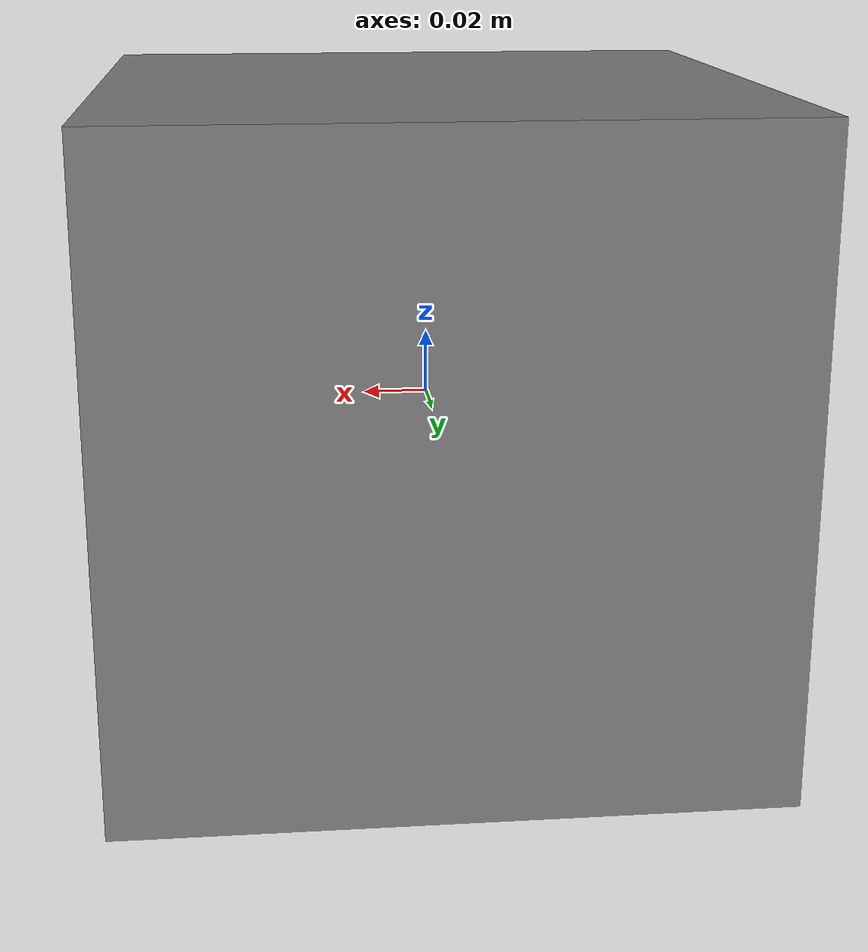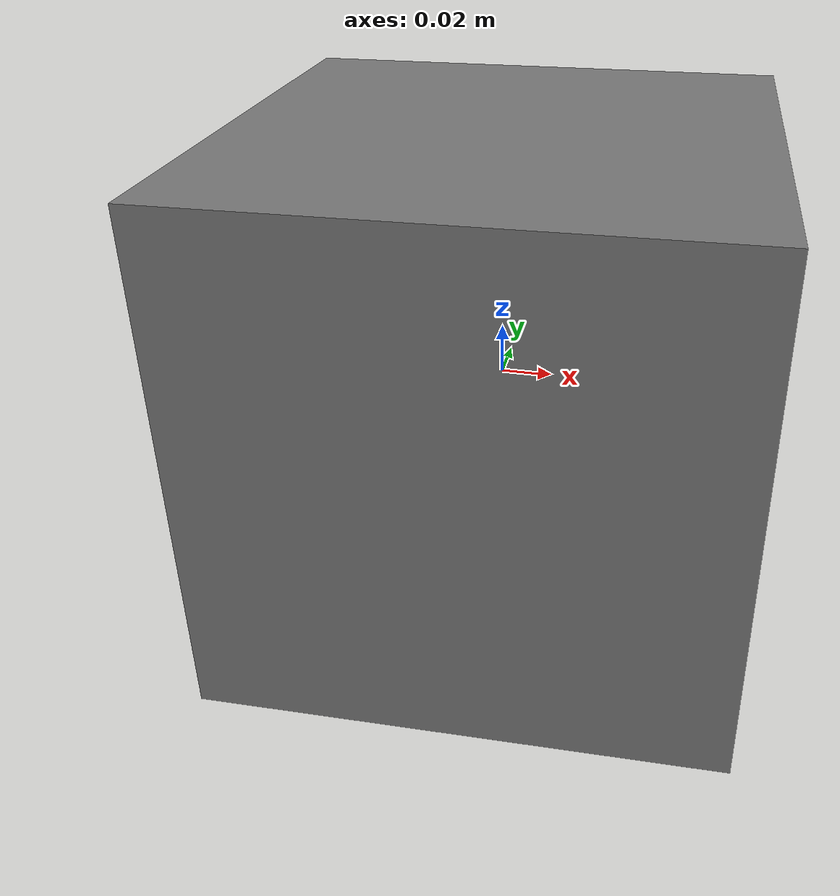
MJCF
<mujoco model="test">
                <worldbody>
                    <body name="link1">
                        <joint name="j1" type="hinge"/>
                        <geom type="box" size="0.1 0.1 0.1"/>
                    </body>
                    <body name="link2">
                        <joint name="j2" type="slide"/>
                        <geom type="box" size="0.1 0.1 0.1"/>
                    </body>
                    <body name="gripper">
                        <geom type="box" size="0.05 0.05 0.01"/>
                    </body>
                </worldbody>
                <actuator>
                    <motor name="motor1" joint="j1" gear="50"/>
                    <position name="pos1" joint="j1" kp="100"/>
                    <cylinder name="cyl1" joint="j2" area="0.001"/>
                    <muscle name="mus1" joint="j1" force="200"/>
                    <adhesion name="adh1" body="gripper" gain="50"/>
                </actuator>
            </mujoco>
